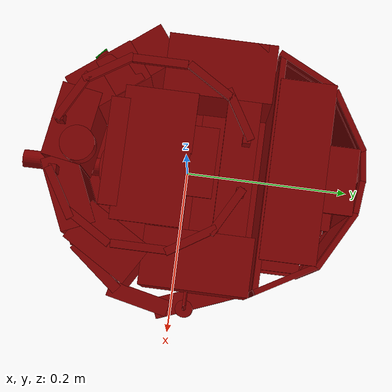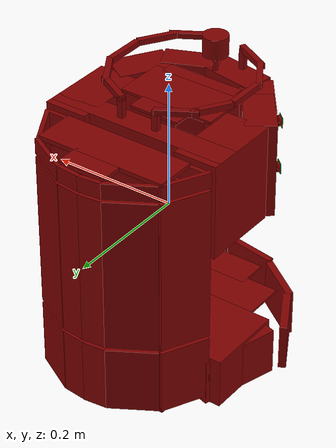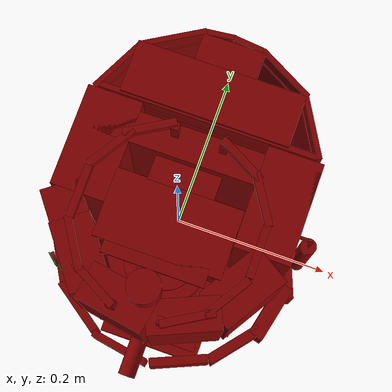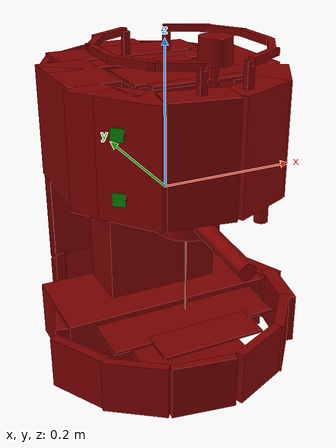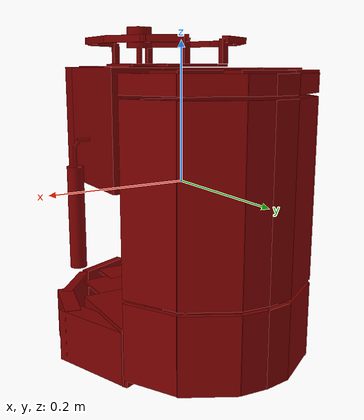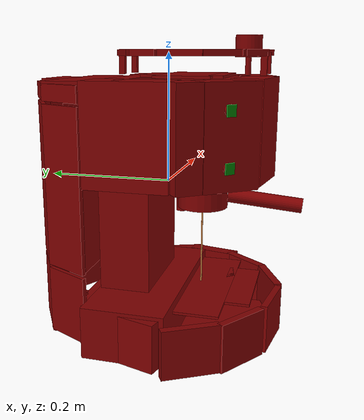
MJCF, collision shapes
<?xml version='1.0' encoding='UTF-8'?>
<mujoco model="model">
  <compiler angle="radian"/>
  <asset>
    <mesh file="visuals/Body001.obj" name="Body001_vis"/>
    <mesh file="visuals/Button001.obj" name="Button001_vis"/>
    <mesh file="visuals/Button002.obj" name="Button002_vis"/>
    <mesh file="visuals/Container001.obj" name="Container001_vis"/>
    <mesh file="visuals/Lever001.obj" name="Lever001_vis"/>
    <mesh file="visuals/Lever002.obj" name="Lever002_vis"/>
    <mesh file="visuals/Lid001.obj" name="Lid001_vis"/>
    <mesh file="visuals/Lid002.obj" name="Lid002_vis"/>
    <mesh file="visuals/Lid003.obj" name="Lid003_vis"/>
    <texture file="visuals/T_BC001.png" name="Body001_material" type="2d"/>
    <material name="Body001_material" rgba="1 1 1 1.0" texture="Body001_material" shininess="0.4472135901451111" specular="0.3103448502657381"/>
    <texture file="visuals/T_BC001.png" name="Button001_material" type="2d"/>
    <material name="Button001_material" rgba="1 1 1 1.0" texture="Button001_material" shininess="0.4472135901451111" specular="0.3103448502657381"/>
    <texture file="visuals/T_BC001.png" name="Button002_material" type="2d"/>
    <material name="Button002_material" rgba="1 1 1 1.0" texture="Button002_material" shininess="0.4472135901451111" specular="0.3103448502657381"/>
    <material name="Container001_material" rgba="0.10878986120223999 0.10878986120223999 0.10878986120223999 0.20467835664749146" shininess="0.5" specular="0.3103448502657381"/>
    <texture file="visuals/T_BC001.png" name="Lid003_material" type="2d"/>
    <material name="Lid003_material" rgba="1 1 1 1.0" texture="Lid003_material" shininess="0.4472135901451111" specular="0.3103448502657381"/>
    <texture file="visuals/T_BC001.png" name="Lever001_material" type="2d"/>
    <material name="Lever001_material" rgba="1 1 1 1.0" texture="Lever001_material" shininess="0.4472135901451111" specular="0.3103448502657381"/>
    <texture file="visuals/T_BC001.png" name="Lever002_material" type="2d"/>
    <material name="Lever002_material" rgba="1 1 1 1.0" texture="Lever002_material" shininess="0.4472135901451111" specular="0.3103448502657381"/>
    <texture file="visuals/T_BC001.png" name="Lid001_material" type="2d"/>
    <material name="Lid001_material" rgba="1 1 1 1.0" texture="Lid001_material" shininess="0.4472135901451111" specular="0.3103448502657381"/>
    <texture file="visuals/T_BC001.png" name="Lid002_material" type="2d"/>
    <material name="Lid002_material" rgba="1 1 1 1.0" texture="Lid002_material" shininess="0.4472135901451111" specular="0.3103448502657381"/>
  </asset>
  <default>
    <default class="visual">
      <geom conaffinity="0" contype="0" group="1" type="mesh"/>
    </default>
    <default class="collision">
      <geom group="0" rgba="0.5 0 0 0.5"/>
    </default>
    <default class="spawn">
      <geom group="0" rgba="1 1 1 0.5" contype="0" conaffinity="0"/>
      <site group="0" rgba="1 1 1 0.5"/>
    </default>
    <default class="region">
      <geom group="1" conaffinity="0" contype="0" rgba="0 1 0 0"/>
    </default>
  </default>
  <worldbody>
    <body>
      <body name="object">
        <geom class="collision" type="box" pos="-0.114439956843853 -0.1159018874168396 0.12538622319698334" size="0.00819050706923008 0.00819050520658493 0.0004903351655229926" quat="0.6462324857711792 0.2870253920555115 -0.6462324857711792 0.2870253920555115" name="start_button_1" rgba="0.0 0.5 0 0.5"/>
        <geom class="collision" type="box" pos="-0.114439956843853 -0.1159018874168396 0.04745563119649887" size="0.00819050706923008 0.00819050520658493 0.0004903351655229926" quat="0.6462324857711792 0.2870253920555115 -0.6462324857711792 0.2870253920555115" name="start_button_2" rgba="0.0 0.5 0 0.5"/>
        <site type="cylinder" rgba="0.8 0.5 0.25 1" size="0.0012810324551537633 0.06266500055789948" pos="0.0030721731018275023 -0.05583366006612778 -0.1046128123998642" name="coffee_liquid"/>
        <site rgba="0 0 0 0" size="0.009999999776482582 0.009999999776482582" pos="0.003085220232605934 -0.05578720569610596 -0.16415628790855408" name="receptacle_place_site"/>
        <geom mesh="Body001_vis" type="mesh" solimp="0.998 0.998 0.001" solref="0.001 1" density="100" friction="0.95 0.3 0.1" class="visual" material="Body001_material"/>
        <geom class="collision" type="box" pos="0.0018969695083796978 0.04997701197862625 -0.0875634104013443" size="0.0807318463921547 0.03959117829799652 0.10223612934350967" quat="1.0 0.0 0.0 0.0"/>
        <geom class="collision" type="box" pos="-0.10919119417667389 0.02599221281707287 0.08751603215932846" size="0.03434810787439346 0.0633862167596817 0.07537300139665604" quat="1.0 0.0 0.0 0.0"/>
        <geom class="collision" type="cylinder" pos="0.004656010307371616 -0.12063196301460266 0.20872418582439423" size="0.01970338448882103 0.015624829567968845" quat="1.0 0.0 0.0 0.0"/>
        <geom class="collision" type="cylinder" pos="0.004656009841710329 -0.12063196301460266 0.18062236905097961" size="0.004328385926783085 0.01360324863344431" quat="1.0 0.0 0.0 0.0"/>
        <geom class="collision" type="box" pos="0.10859725624322891 -0.03965373709797859 0.19938883185386658" size="0.004523163661360741 0.03143675997853279 0.004523163661360741" quat="1.0 0.0 0.0 0.0"/>
        <geom class="collision" type="box" pos="0.09399951249361038 0.01718311943113804 0.19938883185386658" size="0.004523163661360741 0.03143675997853279 0.004523163661360741" quat="0.9607182145118713 0.0 0.0 0.2775256931781769"/>
        <geom class="collision" type="box" pos="0.05724196508526802 0.052783459424972534 0.19938883185386658" size="0.004523163661360741 0.03143675997853279 0.004523163661360741" quat="0.8607912063598633 0.0 0.0 0.5089582204818726"/>
        <geom class="collision" type="box" pos="0.0929127186536789 -0.09943615645170212 0.19938883185386658" size="0.004523163661360741 0.03143675997853279 0.004523163661360741" quat="0.9616172313690186 0.0 -0.0 -0.27439436316490173"/>
        <geom class="collision" type="box" pos="0.05980011075735092 -0.13517871499061584 0.19938883185386658" size="0.004523163661360741 0.03143675997853279 0.004523163661360741" quat="0.8701815605163574 0.0 -0.0 -0.49273115396499634"/>
        <geom class="collision" type="box" pos="0.03333304077386856 0.06504952907562256 0.1840071976184845" size="0.004523163661360741 0.004523166920989752 0.016055120155215263" quat="1.0 0.0 0.0 0.0"/>
        <geom class="collision" type="box" pos="0.03333304077386856 -0.14687955379486084 0.1840071827173233" size="0.004523163661360741 0.004523166920989752 0.016055120155215263" quat="1.0 0.0 0.0 0.0"/>
        <geom class="collision" type="box" pos="-0.10114876180887222 -0.0420982763171196 0.19938883185386658" size="0.004523163661360741 0.03143675997853279 0.004523165989667177" quat="1.0 0.0 0.0 0.0"/>
        <geom class="collision" type="box" pos="-0.08655101805925369 -0.09893513470888138 0.19938883185386658" size="0.004523163661360741 0.03143675997853279 0.004523165989667177" quat="0.9607182145118713 0.0 0.0 0.2775256931781769"/>
        <geom class="collision" type="box" pos="-0.049793459475040436 -0.1345355212688446 0.19938881695270538" size="0.0045231725089251995 0.031436774879693985 0.004523164592683315" quat="0.8607912063598633 0.0 0.0 0.5089582204818726"/>
        <geom class="collision" type="box" pos="-0.08546417206525803 0.017684148624539375 0.19938883185386658" size="0.004523163661360741 0.031436752527952194 0.004523164592683315" quat="0.9616172313690186 0.0 -0.0 -0.27439436316490173"/>
        <geom class="collision" type="box" pos="-0.052351564168930054 0.05342668294906616 0.19938884675502777" size="0.004523163661360741 0.03143675997853279 0.004523164592683315" quat="0.8701815605163574 0.0 -0.0 -0.49273115396499634"/>
        <geom class="collision" type="box" pos="-0.02588452771306038 -0.14680154621601105 0.1840071976184845" size="0.004523159470409155 0.004523175768554211 0.016055118292570114" quat="1.0 0.0 0.0 0.0"/>
        <geom class="collision" type="box" pos="-0.025884505361318588 0.06512750685214996 0.1840071976184845" size="0.0045231725089251995 0.004523166920989752 0.016055118292570114" quat="1.0 0.0 0.0 0.0"/>
        <geom class="collision" type="box" pos="-0.12050645798444748 0.1270085871219635 -0.1776728481054306" size="0.0033383583649992943 0.038740064948797226 0.05269257724285126" quat="0.9738687872886658 0.0 -0.0 -0.22711150348186493"/>
        <geom class="collision" type="box" pos="-0.0685436874628067 0.1812674105167389 -0.1776728630065918" size="0.0033383583649992943 0.038740064948797226 0.05269256979227066" quat="0.49204421043395996 0.0 0.0 0.8705702424049377"/>
        <geom class="collision" type="box" pos="-0.01791485771536827 0.2024690955877304 -0.1776728630065918" size="0.0033383583649992943 0.018953552469611168 0.05269255489110947" quat="0.6659803986549377 0.0 0.0 0.7459692358970642"/>
        <geom class="collision" type="box" pos="0.017970817163586617 0.2022562175989151 -0.1776728630065918" size="0.0033383583649992943 0.018953552469611168 0.05269256979227066" quat="0.7413256168365479 0.0 0.0 0.6711455583572388"/>
        <geom class="collision" type="box" pos="0.07079971581697464 0.1825128048658371 -0.1776728630065918" size="0.0033383583649992943 0.038740064948797226 0.05269256979227066" quat="0.8594831824302673 0.0 0.0 0.5111640095710754"/>
        <geom class="collision" type="box" pos="0.12229305505752563 0.12942278385162354 -0.1776728630065918" size="0.0033383583649992943 0.038740064948797226 0.05269256979227066" quat="0.9661666750907898 0.0 0.0 0.2579185664653778"/>
        <geom class="collision" type="box" pos="0.0023456302005797625 0.17607322335243225 -0.22983328998088837" size="0.03884468972682953 0.020146992057561874 0.003411775454878807" quat="1.0 0.0 0.0 0.0"/>
        <geom class="collision" type="box" pos="-0.0018913892563432455 0.12911415100097656 -0.22983328998088837" size="0.10514144599437714 0.03288181871175766 0.003411775454878807" quat="1.0 0.0 0.0 0.0"/>
        <geom class="collision" type="box" pos="-0.08250706642866135 -0.10179237276315689 0.08751603215932846" size="0.02460833080112934 0.0432954840362072 0.07537300139665604" quat="0.9480372667312622 0.0 0.0 0.31815922260284424"/>
        <geom class="collision" type="box" pos="-0.024091754108667374 -0.13588736951351166 0.08959172666072845" size="0.023709628731012344 0.0432954840362072 0.07537300139665604" quat="0.7632952928543091 0.0 0.0 0.6460497379302979"/>
        <geom class="collision" type="box" pos="0.0534895583987236 -0.1298712193965912 0.08959172666072845" size="0.02037210948765278 0.0432954840362072 0.07537300139665604" quat="0.5480373501777649 0.0 0.0 0.8364538550376892"/>
        <geom class="collision" type="box" pos="0.1060602068901062 -0.07767917960882187 0.08862730115652084" size="0.026491722092032433 0.0432954840362072 0.07478740066289902" quat="0.271138995885849 0.0 0.0 0.9625402092933655"/>
        <geom class="collision" type="box" pos="-0.10672108083963394 -0.06958819925785065 0.08751603215932846" size="0.023256944492459297 0.0432954840362072 0.07537300139665604" quat="0.9466404318809509 0.0 0.0 0.3222915530204773"/>
        <geom class="collision" type="box" pos="0.11470060795545578 0.02599221281707287 0.08751603215932846" size="0.034222282469272614 0.0633862167596817 0.07537300139665604" quat="1.0 0.0 0.0 0.0"/>
        <geom class="collision" type="box" pos="0.002764366567134857 0.058773282915353775 0.08751603215932846" size="0.14615850150585175 0.01950208842754364 0.07537300139665604" quat="1.0 0.0 0.0 0.0"/>
        <geom class="collision" type="box" pos="-0.007576577365398407 0.02851649932563305 -0.20269903540611267" size="0.1507406085729599 0.0633862167596817 0.040254101157188416" quat="1.0 0.0 0.0 0.0"/>
        <geom class="collision" type="box" pos="-0.14465491473674774 0.03459354117512703 -0.20552359521389008" size="0.012788098305463791 0.0633862167596817 0.03742953762412071" quat="0.9898115396499634 0.0 -0.0 -0.1423838585615158"/>
        <geom class="collision" type="box" pos="0.0048720501363277435 -0.0923909917473793 -0.23442348837852478" size="0.07528094202280045 0.0633862167596817 0.00852964911609888" quat="1.0 0.0 0.0 0.0"/>
        <geom class="collision" type="box" pos="-0.10853484272956848 -0.13796357810497284 -0.20552358031272888" size="0.005696525331586599 0.0432954840362072 0.03742954507470131" quat="0.8887275457382202 0.0 0.0 0.4584357440471649"/>
        <geom class="collision" type="box" pos="-0.030485402792692184 -0.17404870688915253 -0.20344789326190948" size="0.005134956445544958 0.0432954840362072 0.03742954507470131" quat="0.7632952928543091 0.0 0.0 0.6460497379302979"/>
        <geom class="collision" type="box" pos="0.057994332164525986 -0.16286195814609528 -0.20344790816307068" size="0.006392143201082945 0.0432954840362072 0.03742953762412071" quat="0.5480373501777649 0.0 0.0 0.8364538550376892"/>
        <geom class="collision" type="box" pos="0.12643426656723022 -0.113437220454216 -0.2044123113155365" size="0.007415276486426592 0.0432954840362072 0.03684394061565399" quat="0.3355433940887451 0.0 0.0 0.9420247673988342"/>
        <geom class="collision" type="box" pos="0.16167567670345306 -0.04938594251871109 -0.2044123262166977" size="0.01123436912894249 0.0432954840362072 0.036843933165073395" quat="0.10881514102220535 0.0 0.0 0.9940620064735413"/>
        <geom class="collision" type="box" pos="-0.16102667152881622 -0.07437465339899063 -0.20552358031272888" size="0.006011230405420065 0.0432954840362072 0.03742954507470131" quat="0.966658890247345 0.0 0.0 0.25606754422187805"/>
        <geom class="collision" type="box" pos="0.15010036528110504 0.032729070633649826 -0.20552358031272888" size="0.014032161794602871 0.0633862167596817 0.03742954507470131" quat="0.9824390411376953 0.0 0.0 0.18658389151096344"/>
        <body name="Button001">
          <joint axis="0.7288501262664795 0.6846731901168823 0.0" pos="-0.11143326759338379 -0.11243768781423569 0.04754336178302765" limited="true" name="Button001_joint" range="0.0 0.003" type="slide" damping="1" frictionloss="1" armature=".01" stiffness="0.05"/>
          <geom mesh="Button001_vis" type="mesh" solimp="0.998 0.998 0.001" solref="0.001 1" density="100" friction="0.95 0.3 0.1" class="visual" material="Button001_material"/>
          <geom class="collision" type="cylinder" pos="-0.11255216598510742 -0.11381284147500992 0.04758553206920624" size="0.00819050706923008 0.0018527028150856495" quat="0.6462324857711792 0.2870253920555115 -0.6462324857711792 0.2870253920555115"/>
        </body>
        <body name="Button002">
          <joint axis="0.7071068286895752 0.7071068286895752 0.0" pos="-0.111442930996418 -0.11237069219350815 0.12530693411827087" limited="true" name="Button002_joint" range="0.0 0.003" type="slide" damping="1" frictionloss="1" armature=".01" stiffness="0.05"/>
          <geom mesh="Button002_vis" type="mesh" solimp="0.998 0.998 0.001" solref="0.001 1" density="100" friction="0.95 0.3 0.1" class="visual" material="Button002_material"/>
          <geom class="collision" type="cylinder" pos="-0.11246848106384277 -0.11372023820877075 0.12577678263187408" size="0.00819050706923008 0.001977515872567892" quat="0.6462324857711792 0.2870253920555115 -0.6462324857711792 0.2870253920555115"/>
        </body>
        <body name="Container001">
          <joint axis="0.0 0.0 1.0" pos="0.00022120773792266846 0.1454581916332245 0.0058022551238536835" limited="true" name="Container001_joint" range="0.0 0.08" type="slide" damping="1" frictionloss="1" armature=".01" stiffness="0.05"/>
          <geom mesh="Container001_vis" type="mesh" solimp="0.998 0.998 0.001" solref="0.001 1" density="100" friction="0.95 0.3 0.1" class="visual" material="Container001_material"/>
          <geom class="collision" type="box" pos="0.12229305505752563 0.12942278385162354 0.003630023915320635" size="0.0033383583649992943 0.038740064948797226 0.12355168163776398" quat="0.9661666750907898 0.0 0.0 0.2579185664653778"/>
          <geom class="collision" type="box" pos="0.07079971581697464 0.1825128048658371 0.003630023915320635" size="0.0033383583649992943 0.038740064948797226 0.12355168163776398" quat="0.8594831824302673 0.0 0.0 0.5111640095710754"/>
          <geom class="collision" type="box" pos="0.017970817163586617 0.2022562175989151 0.003630023915320635" size="0.0033383583649992943 0.018953552469611168 0.12355168163776398" quat="0.7413256168365479 0.0 0.0 0.6711455583572388"/>
          <geom class="collision" type="box" pos="-0.01791485771536827 0.2024690955877304 0.0036300281062722206" size="0.0033383583649992943 0.018953552469611168 0.12355167418718338" quat="0.6659803986549377 0.0 0.0 0.7459692358970642"/>
          <geom class="collision" type="box" pos="-0.01791485771536827 0.2024690955877304 0.0036300281062722206" size="0.0033383583649992943 0.018953552469611168 0.12355167418718338" quat="0.6659803986549377 0.0 0.0 0.7459692358970642"/>
          <geom class="collision" type="box" pos="-0.01791485771536827 0.2024690955877304 0.0036300281062722206" size="0.0033383583649992943 0.018953552469611168 0.12355167418718338" quat="0.6659803986549377 0.0 0.0 0.7459692358970642"/>
          <geom class="collision" type="box" pos="-0.0685436874628067 0.1812674105167389 0.003630023915320635" size="0.0033383583649992943 0.038740064948797226 0.12355168163776398" quat="0.49204421043395996 0.0 0.0 0.8705702424049377"/>
          <geom class="collision" type="box" pos="-0.12050645798444748 0.1270085871219635 0.003630023915320635" size="0.0033383583649992943 0.038740064948797226 0.12355168163776398" quat="0.9738687872886658 0.0 -0.0 -0.22711150348186493"/>
          <geom class="collision" type="box" pos="0.0022769831120967865 0.09677085280418396 0.0035926811397075653" size="0.1364605724811554 0.0033739253412932158 0.12297900021076202" quat="1.0 0.0 0.0 0.0"/>
          <geom class="collision" type="box" pos="-0.0018913892563432455 0.12911415100097656 -0.11757536977529526" size="0.10514144599437714 0.03288181871175766 0.003411775454878807" quat="1.0 0.0 0.0 0.0"/>
          <geom class="collision" type="box" pos="0.0023456302005797625 0.17607322335243225 -0.11757536977529526" size="0.03884468972682953 0.020146992057561874 0.003411775454878807" quat="1.0 0.0 0.0 0.0"/>
          <body name="Lid003">
            <joint axis="0.0 0.0 1.0" pos="0.00039023905992507935 0.14542242884635925 0.14549991488456726" limited="true" name="Lid003_joint" range="0.0 0.08" type="slide" damping="1" frictionloss="1" armature=".01" stiffness="0.05"/>
            <geom mesh="Lid003_vis" type="mesh" solimp="0.998 0.998 0.001" solref="0.001 1" density="100" friction="0.95 0.3 0.1" class="visual" material="Lid003_material"/>
            <geom class="collision" type="box" pos="0.0022769831120967865 0.09677085280418396 0.1439073085784912" size="0.13646110892295837 0.003373934654518962 0.011830603703856468" quat="1.0 0.0 0.0 0.0"/>
            <geom class="collision" type="box" pos="-0.12050645798444748 0.1270085871219635 0.1439446657896042" size="0.0033383583649992943 0.038740064948797226 0.012402228079736233" quat="0.9738687872886658 0.0 -0.0 -0.22711150348186493"/>
            <geom class="collision" type="box" pos="-0.0685436874628067 0.1812674105167389 0.1439446657896042" size="0.0033383583649992943 0.038740064948797226 0.012402218766510487" quat="0.49204421043395996 0.0 0.0 0.8705702424049377"/>
            <geom class="collision" type="box" pos="-0.01791485771536827 0.2024690955877304 0.14394469559192657" size="0.0033383583649992943 0.018953552469611168 0.0124021852388978" quat="0.6659803986549377 0.0 0.0 0.7459692358970642"/>
            <geom class="collision" type="box" pos="-0.01791485771536827 0.2024690955877304 0.14394469559192657" size="0.0033383583649992943 0.018953552469611168 0.0124021852388978" quat="0.6659803986549377 0.0 0.0 0.7459692358970642"/>
            <geom class="collision" type="box" pos="-0.01791485771536827 0.2024690955877304 0.14394469559192657" size="0.0033383583649992943 0.018953552469611168 0.0124021852388978" quat="0.6659803986549377 0.0 0.0 0.7459692358970642"/>
            <geom class="collision" type="box" pos="0.017970817163586617 0.2022562175989151 0.14394468069076538" size="0.0033383583649992943 0.018953552469611168 0.012402210384607315" quat="0.7413256168365479 0.0 0.0 0.6711455583572388"/>
            <geom class="collision" type="box" pos="0.07079971581697464 0.1825128048658371 0.14394468069076538" size="0.0033383583649992943 0.038740064948797226 0.012402210384607315" quat="0.8594831824302673 0.0 0.0 0.5111640095710754"/>
            <geom class="collision" type="box" pos="0.0023456302005797625 0.17607322335243225 0.1567123681306839" size="0.03884468972682953 0.020146992057561874 0.003411775454878807" quat="1.0 0.0 0.0 0.0"/>
            <geom class="collision" type="box" pos="-0.0018913892563432455 0.12911415100097656 0.1567123681306839" size="0.10514144599437714 0.03288181871175766 0.003411775454878807" quat="1.0 0.0 0.0 0.0"/>
            <geom class="collision" type="box" pos="0.12229305505752563 0.12942278385162354 0.14394468069076538" size="0.0033383583649992943 0.038740064948797226 0.012402210384607315" quat="0.9661666750907898 0.0 0.0 0.2579185664653778"/>
          </body>
        </body>
        <body name="Lever001">
          <joint axis="0.0 0.0 -1.0" pos="0.0031142751686275005 -0.05583575367927551 -0.02416890673339367" limited="true" name="Lever001_joint" range="0.0 1.5707963267948966" type="hinge" damping="1" frictionloss="1" armature=".01" stiffness="1"/>
          <geom mesh="Lever001_vis" type="mesh" solimp="0.998 0.998 0.001" solref="0.001 1" density="100" friction="0.95 0.3 0.1" class="visual" material="Lever001_material"/>
          <geom class="collision" type="cylinder" pos="0.0034695423673838377 -0.05608683079481125 -0.01214938797056675" size="0.039640821516513824 0.027023576200008392" quat="1.0 0.0 0.0 0.0"/>
          <geom class="collision" type="cylinder" pos="0.0034695423673838377 -0.15436747670173645 -0.022951556369662285" size="0.011335988529026508 0.05698069557547569" quat="0.6759827136993408 0.7369174957275391 0.0 0.0"/>
          <geom class="collision" type="cylinder" pos="0.0034695423673838377 -0.05608683079481125 0.002529134973883629" size="0.05548214539885521 0.008703392930328846" quat="1.0 0.0 0.0 0.0"/>
        </body>
        <body name="Lever002">
          <joint axis="-1.0 0.0 0.0" pos="0.16900180280208588 0.017422333359718323 0.0724501833319664" limited="true" name="Lever002_joint" range="0.0 2.0943951023931953" type="hinge" damping="1" frictionloss="1" armature=".01" stiffness="1"/>
          <geom mesh="Lever002_vis" type="mesh" solimp="0.998 0.998 0.001" solref="0.001 1" density="100" friction="0.95 0.3 0.1" class="visual" material="Lever002_material"/>
          <geom class="collision" type="cylinder" pos="0.16925831139087677 0.017138060182332993 -0.028244633227586746" size="0.010701263323426247 0.06714522838592529" quat="1.0 0.0 0.0 0.0"/>
          <geom class="collision" type="cylinder" pos="0.16925831139087677 0.01759207621216774 0.05173881724476814" size="0.0022424543276429176 0.01283822301775217" quat="1.0 0.0 0.0 0.0"/>
          <geom class="collision" type="cylinder" pos="0.15686258673667908 0.01759207621216774 0.07229376584291458" size="0.0022424545604735613 0.008915522135794163" quat="0.7071068286895752 0.0 -0.7071067690849304 0.0"/>
          <geom class="collision" type="cylinder" pos="0.16664806008338928 0.01759207621216774 0.06736140698194504" size="0.0022424543276429176 0.0043508196249604225" quat="0.9478495717048645 0.0 -0.3187180757522583 0.0"/>
        </body>
        <body name="Lid001">
          <joint axis="0.0 0.0 1.0" pos="0.002792026149109006 -0.03702118992805481 0.16797953844070435" limited="true" name="Lid001_joint" range="0.0 0.05" type="slide" damping="1" frictionloss="1" armature=".01" stiffness="0.05"/>
          <geom mesh="Lid001_vis" type="mesh" solimp="0.998 0.998 0.001" solref="0.001 1" density="100" friction="0.95 0.3 0.1" class="visual" material="Lid001_material"/>
          <geom class="collision" type="box" pos="0.0018969359807670116 -0.03699541091918945 0.16609638929367065" size="0.07777687907218933 0.04223214462399483 0.0019421444740146399" quat="1.0 0.0 0.0 0.0"/>
          <geom class="collision" type="box" pos="0.0018969359807670116 -0.08303792029619217 0.16609638929367065" size="0.06252610683441162 0.011090227402746677 0.0019421444740146399" quat="1.0 0.0 0.0 0.0"/>
          <geom class="collision" type="box" pos="0.0018969359807670116 0.018720969557762146 0.16609638929367065" size="0.04047929123044014 0.015090534463524818 0.0019421444740146399" quat="1.0 0.0 0.0 0.0"/>
        </body>
        <body name="Lid002">
          <joint axis="0.0 0.0 1.0" pos="0.0012082523899152875 -0.08217865228652954 -0.16911271214485168" limited="true" name="Lid002_joint" range="0.0 0.05" type="slide" damping="1" frictionloss="1" armature=".01" stiffness="0.05"/>
          <geom mesh="Lid002_vis" type="mesh" solimp="0.998 0.998 0.001" solref="0.001 1" density="100" friction="0.95 0.3 0.1" class="visual" material="Lid002_material"/>
          <geom class="collision" type="box" pos="-0.004579603206366301 -0.07303577661514282 -0.1690877377986908" size="0.1189410462975502 0.033708397299051285 0.0019421444740146399" quat="1.0 0.0 0.0 0.0"/>
          <geom class="collision" type="box" pos="0.0018969359807670116 -0.11937829107046127 -0.1690877377986908" size="0.07223173975944519 0.025448080152273178 0.0019421444740146399" quat="1.0 0.0 0.0 0.0"/>
        </body>
        <geom class="region" name="reg_main" type="box" pos="-3.725290298461914e-09 0.014090955257415771 0.0" size="0.18474824726581573 0.19737039506435394 0.23151323199272156"/>
      </body>
    </body>
  </worldbody>
  <actuator>
    <motor name="Button001_joint_actuator" joint="Button001_joint" gear="0.5"/>
    <motor name="Button002_joint_actuator" joint="Button002_joint" gear="0.5"/>
    <motor name="Container001_joint_actuator" joint="Container001_joint" gear="10"/>
    <motor name="Lever001_joint_actuator" joint="Lever001_joint" gear="10"/>
    <motor name="Lever002_joint_actuator" joint="Lever002_joint" gear="10"/>
    <motor name="Lid001_joint_actuator" joint="Lid001_joint" gear="10"/>
    <motor name="Lid002_joint_actuator" joint="Lid002_joint" gear="10"/>
    <motor name="Lid003_joint_actuator" joint="Lid003_joint" gear="10"/>
  </actuator>
</mujoco>
